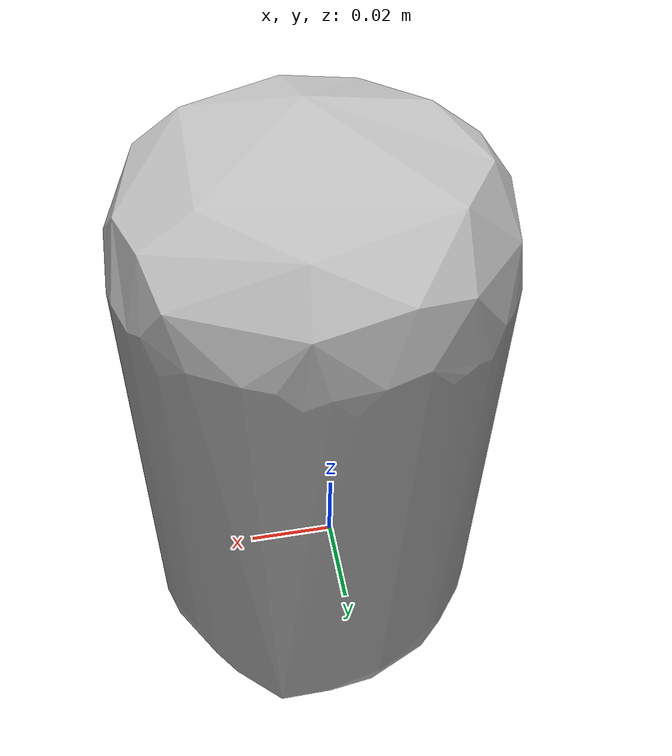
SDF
<?xml version='1.0'?>
<sdf version="1.4">
  <model name="v8_fusion_peach_mango">
    <static>false</static>
    <link name="link">
      <inertial>
        <pose>0.006098948880036428 0.010354526758589704 0.0616320760559236 3.133388201101106 -0.0029261399080049454 2.917219959187897</pose>
        <mass>0.04317960514306972</mass>
        <inertia>
          <ixx>5.735955269717137e-05</ixx>
          <ixy>1.3839547698096004e-21</ixy>
          <ixz>3.6449492144027963e-22</ixz>
          <iyy>5.705984176172272e-05</iyy>
          <iyz>3.2101806204634994e-22</iyz>
          <izz>2.6324262880340272e-05</izz>
        </inertia>
      </inertial>
      <collision name="collision">
        <geometry>
          <mesh>
            <!-- Use a downsampled mesh for collisions -->
            <uri>model:///v8_fusion_peach_mango/v8_fusion_peach_mango_250_collision.obj</uri>
	        </mesh>
        </geometry>
        <surface>
      </surface>
      </collision>
      <visual name="visual">
        <geometry>
          <mesh>
            <uri>model:///v8_fusion_peach_mango/optimized_tsdf_texture_mapped_mesh.obj</uri>
	        </mesh>
        </geometry>
        <material>
          <script>
            <uri>model:///v8_fusion_peach_mango/v8_fusion_peach_mango.material</uri>
            <name>v8_fusion_peach_mango</name>
          </script>
        </material>
      </visual>
    </link>
  </model>
</sdf>
